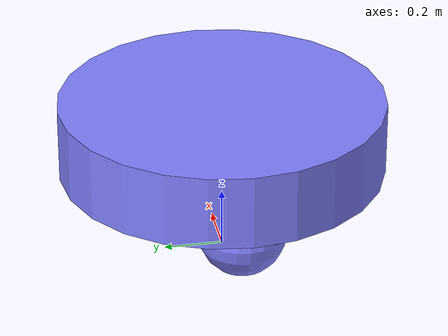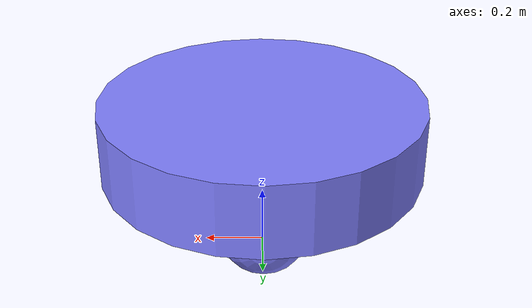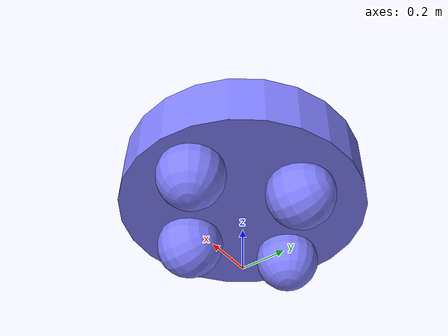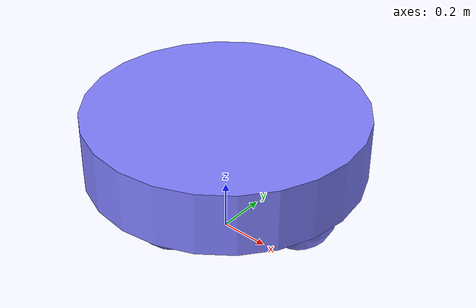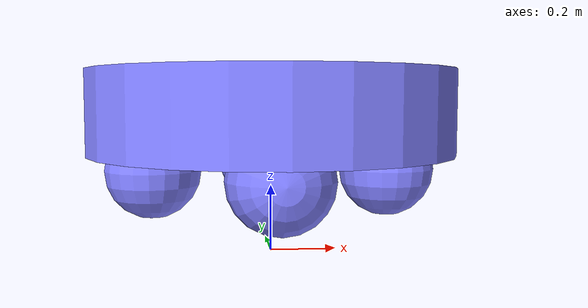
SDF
<?xml version='1.0' encoding='utf-8'?>
<sdf version='1.9'>
      <model name='human_vehicle'>
      <pose>0 0 0.325 0 0 0</pose>

      <link name='base_footprint'>
        <pose>0 -0 0.1 0 -0 0</pose>
        <inertial>
          <mass>1.14395</mass>
          <inertia>
            <ixx>0.126164</ixx>
            <ixy>0</ixy>
            <ixz>0</ixz>
            <iyy>0.416519</iyy>
            <iyz>0</iyz>
            <izz>0.481014</izz>
          </inertia>
        </inertial>
        <visual name='visual'>
          <geometry>
          <cylinder>
          <radius>0.55</radius>
          <length>0.250</length>
          </cylinder>
          </geometry>
          <material>
            <ambient>0.5 0.5 1.0 1</ambient>
            <diffuse>0.5 0.5 1.0 1</diffuse>
            <specular>0.0 0.0 1.0 1</specular>
          </material>
        </visual>
        <collision name='collision'>
          <geometry>
            <cylinder>
          <radius>0.55</radius>
          <length>0.150</length>
          </cylinder>
          </geometry>
        </collision>
      </link>

      <link name='left_wheel'>
        <pose>0.0 0.3 -0.075 -1.570707963267948966 0 0</pose>
        <inertial>
          <mass>2</mass>
          <inertia>
            <ixx>0.145833</ixx>
            <ixy>0</ixy>
            <ixz>0</ixz>
            <iyy>0.145833</iyy>
            <iyz>0</iyz>
            <izz>0.125</izz>
          </inertia>
        </inertial>
        <visual name='visual'>
          <geometry>
            <sphere>
              <radius>0.15</radius>
            </sphere>
          </geometry>
          <material>
            <ambient>0.5 0.5 1.0 1</ambient>
            <diffuse>0.5 0.5 1.0 1</diffuse>
            <specular>0.0 0.0 1.0 1</specular>
          </material>
        </visual>
        <collision name='collision'>
          <geometry>
            <sphere>
              <radius>0.15</radius>
            </sphere>
          </geometry>
        </collision>
      </link>

      <link name='right_wheel'>
        <pose>0.0 -0.3 -0.075 -1.570707963267948966 0 0</pose>
        <inertial>
          <mass>2</mass>
          <inertia>
            <ixx>0.145833</ixx>
            <ixy>0</ixy>
            <ixz>0</ixz>
            <iyy>0.145833</iyy>
            <iyz>0</iyz>
            <izz>0.125</izz>
          </inertia>
        </inertial>
        <visual name='visual'>
          <geometry>
            <sphere>
              <radius>0.15</radius>
            </sphere>
          </geometry>
          <material>
            <ambient>0.5 0.5 1.0 1</ambient>
            <diffuse>0.5 0.5 1.0 1</diffuse>
            <specular>0.0 0.0 1.0 1</specular>
          </material>
          </visual>
        <collision name='collision'>
          <geometry>
            <sphere>
              <radius>0.15</radius>
            </sphere>
          </geometry>
        </collision>
      </link>

      <link name='caster'>
        <pose>-0.357138 -0 -0.075 0 -0 0</pose>
        <inertial>
          <mass>1</mass>
          <inertia>
            <ixx>0.1</ixx>
            <ixy>0</ixy>
            <ixz>0</ixz>
            <iyy>0.1</iyy>
            <iyz>0</iyz>
            <izz>0.1</izz>
          </inertia>
        </inertial>
        <visual name='visual'>
          <geometry>
            <sphere>
              <radius>0.145</radius>
            </sphere>
          </geometry>
          <material>
            <ambient>0.5 0.5 1.0 1</ambient>
            <diffuse>0.5 0.5 1.0 1</diffuse>
            <specular>0.0 0.0 1.0 1</specular>
          </material>
          </visual>
        <collision name='collision'>
          <geometry>
            <sphere>
              <radius>0.145</radius>
            </sphere>
          </geometry>
        </collision>
      </link>

      <link name='caster_front'>
        <pose>0.357138 -0 -0.075 0 -0 0</pose>
        <inertial>
          <mass>1</mass>
          <inertia>
            <ixx>0.1</ixx>
            <ixy>0</ixy>
            <ixz>0</ixz>
            <iyy>0.1</iyy>
            <iyz>0</iyz>
            <izz>0.1</izz>
          </inertia>
        </inertial>
        <visual name='visual'>
          <geometry>
            <sphere>
              <radius>0.145</radius>
            </sphere>
          </geometry>
          <material>
            <ambient>0.5 0.5 1.0 1</ambient>
            <diffuse>0.5 0.5 1.0 1</diffuse>
            <specular>0.0 0.0 1.0 1</specular>
          </material>
          </visual>
        <collision name='collision'>
          <geometry>
            <sphere>
              <radius>0.145</radius>
            </sphere>
          </geometry>
        </collision>
      </link>

      <joint name='front_laser_joint' type='fixed'>
          <pose relative_to='base_footprint'>0.000 -0.0 0.0 3.1415926535897932 0.000 0.000</pose>
      	  <parent>base_footprint</parent>
     	  <child>front_laser_link</child>
      </joint>

      <link name="front_laser_link">
      <pose relative_to='front_laser_joint'>0 0 0 0 0 0</pose>
        <sensor name='human_vehicle_front_laser_sensor' type='gpu_lidar'>
        <ignition_frame_id>human_vehicle/front_laser_link</ignition_frame_id>
        <topic>/human_vehicle/front_laser</topic>
        <update_rate>20</update_rate>
        <lidar>
            <scan>
                <horizontal>
                    <samples>541</samples>
                    <resolution>1</resolution>
                    <min_angle>-3.1415926535897932</min_angle>
                    <max_angle>3.1415926535897932</max_angle>
                </horizontal>
            </scan>
            <range>
                <min>0.56</min>
                <max>15.0</max>
                <resolution>0.03</resolution>
            </range>
        </lidar>
        <always_on>1</always_on>
        <visualize>true</visualize>
      </sensor>

      <visual name='visual'>
          <geometry>
            <sphere>
              <radius>0.05</radius>
            </sphere>
          </geometry>
          <material>
            <ambient>0.5 0.5 1.0 1</ambient>
            <diffuse>0.5 0.5 1.0 1</diffuse>
            <specular>0.0 0.0 1.0 1</specular>
          </material>
          </visual>

      </link>

      <joint name='left_wheel_joint' type='revolute'>
        <parent>base_footprint</parent>
        <child>left_wheel</child>
        <axis>
          <xyz>0 0 1</xyz>
          <limit>
            <lower>-1.79769e+308</lower>
            <upper>1.79769e+308</upper>
          </limit>
        </axis>
      </joint>

      <joint name='right_wheel_joint' type='revolute'>
        <parent>base_footprint</parent>
        <child>right_wheel</child>
        <axis>
          <xyz>0 0 1</xyz>
          <limit>
            <lower>-1.79769e+308</lower>
            <upper>1.79769e+308</upper>
          </limit>
        </axis>
      </joint>

      <joint name='caster_wheel' type='ball'>
        <parent>base_footprint</parent>
        <child>caster</child>
      </joint>

      <joint name='caster_wheel_front' type='ball'>
        <parent>base_footprint</parent>
        <child>caster_front</child>
      </joint>

      <plugin
        filename="ignition-gazebo-diff-drive-system"
        name="ignition::gazebo::systems::DiffDrive">
        <left_joint>left_wheel_joint</left_joint>
        <right_joint>right_wheel_joint</right_joint>
        <wheel_separation>0.6</wheel_separation>
        <wheel_radius>0.15</wheel_radius>
        <odom_publish_frequency>20</odom_publish_frequency>
        <max_linear_acceleration>2.5</max_linear_acceleration>
        <min_linear_acceleration>-2.5</min_linear_acceleration>
        <max_angular_acceleration>3.2</max_angular_acceleration>
        <min_angular_acceleration>-3.2</min_angular_acceleration>
        <max_linear_velocity>0.5</max_linear_velocity>
        <min_linear_velocity>-0.5</min_linear_velocity>
        <max_angular_velocity>1</max_angular_velocity>
        <min_angular_velocity>-1</min_angular_velocity>
        <topic>human_vehicle/cmd_vel</topic>
      	<odom_topic>human_vehicle/odom</odom_topic>
      	<tf_topic>human_vehicle/tf</tf_topic>
      	<frame_id>human_vehicle/odom</frame_id>
        <child_frame_id>human_vehicle/base_footprint</child_frame_id>
      </plugin>
    </model>
</sdf>
